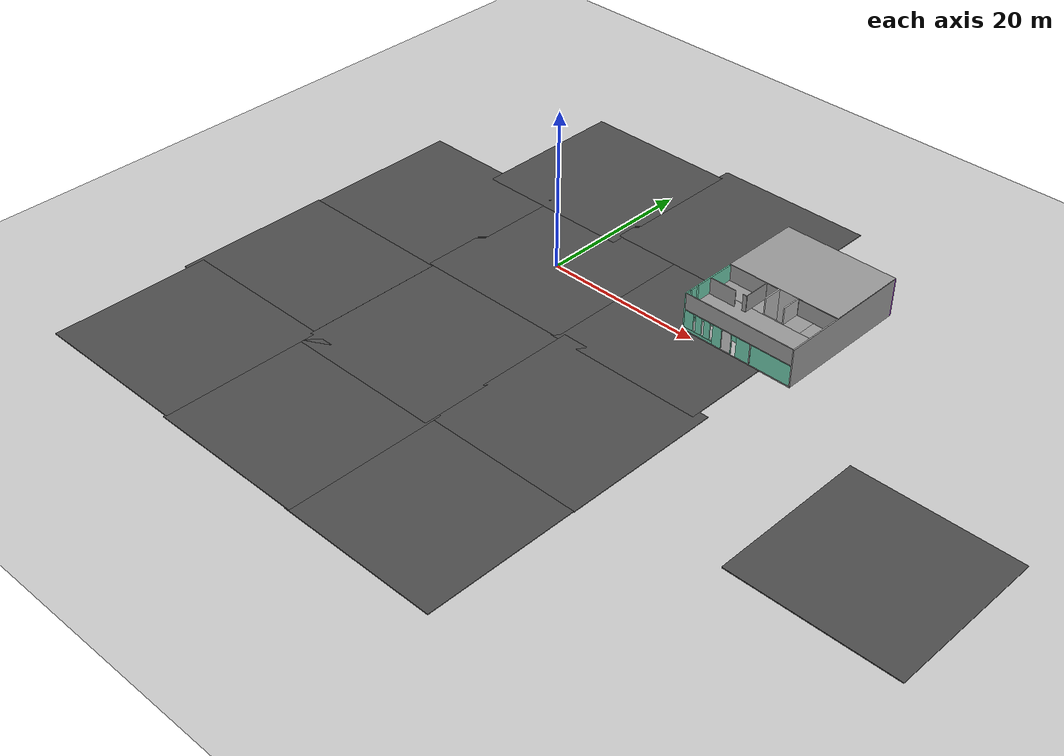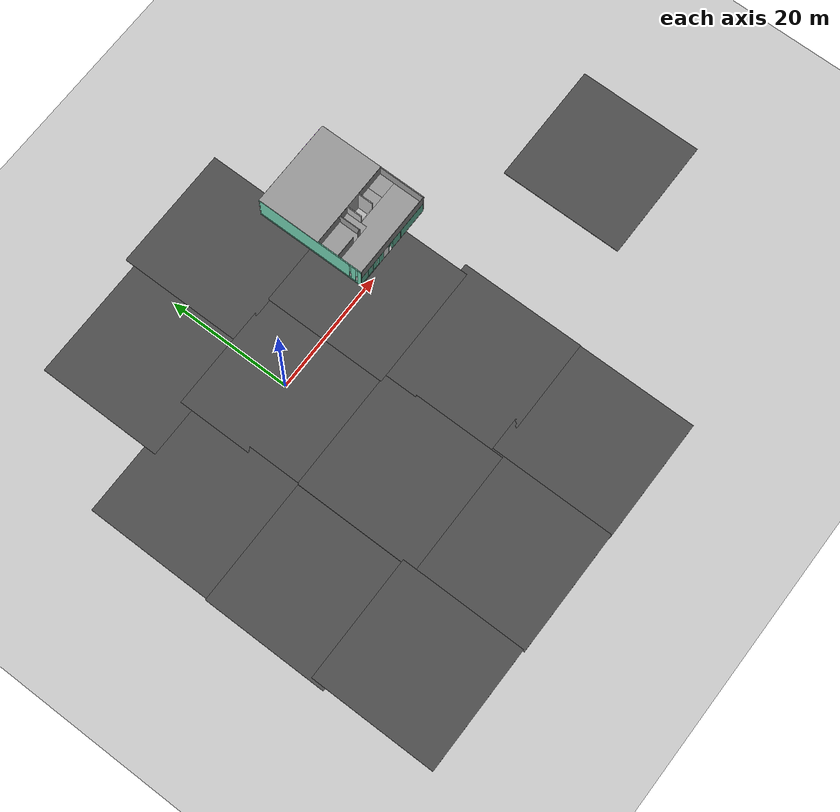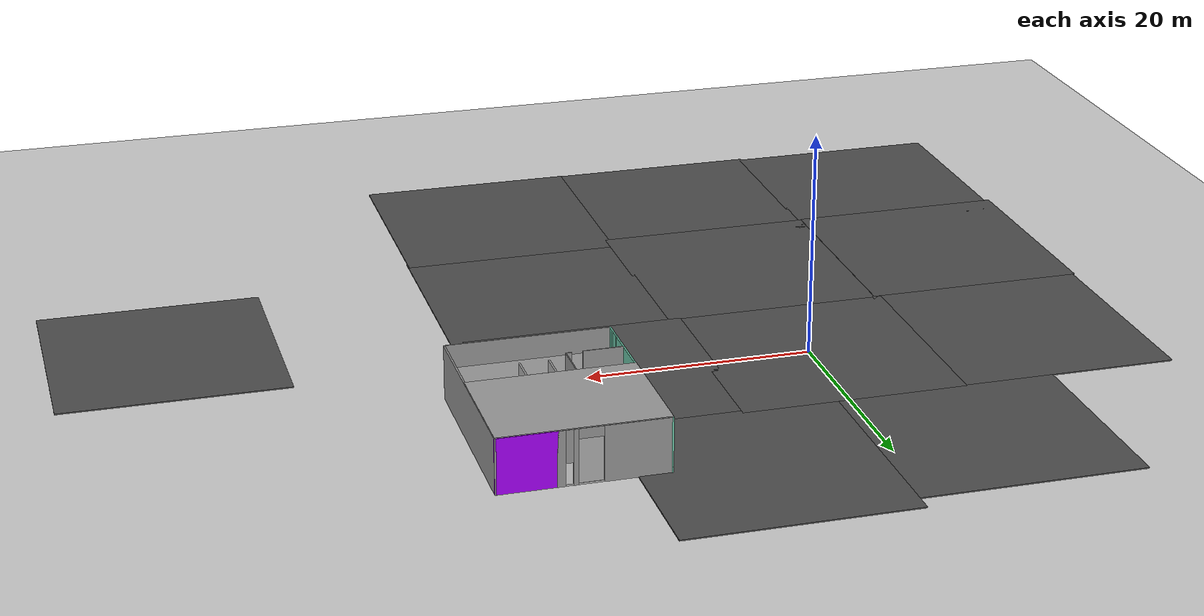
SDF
<sdf version="1.6">
 <world name="default">
  <model name="ground_plane">
   <static>1</static>
   <link name="link">
    <collision name="collision">
     <geometry><plane><normal>0 0 1</normal><size>100 100</size></plane></geometry>
     <surface><friction><ode><mu>100</mu><mu2>50</mu2></ode></friction></surface>
    </collision>
    <visual name="visual">
     <cast_shadows>0</cast_shadows>
     <geometry><plane><normal>0 0 1</normal><size>100 100</size></plane></geometry>
     <material>
      <script><uri>file://media/materials/scripts/gazebo.material</uri><name>Gazebo/Grey</name></script>
     </material>
    </visual>
   </link>
  </model>
  <model name="osrf_elevator">
   <link name="Wall_0">
    <pose>-7.17647 0.013004 0 0 -0 1.57174</pose>
    <visual name="Wall_0_Visual_0">
     <meta><layer>0</layer></meta>
     <pose>-8.72596 0 2.4385 0 -0 0</pose>
     <geometry><box><size>0.663656 0.15 4.877</size></box></geometry>
     <material>
      <script><uri>file://media/materials/scripts/gazebo.material</uri><name>Gazebo/Grey</name></script>
      <ambient>0.435294 0.796078 0.67451 1</ambient>
     </material>
    </visual>
    <collision name="Wall_0_Collision_0">
     <geometry><box><size>0.663656 0.15 4.877</size></box></geometry>
     <pose>-8.72596 0 2.4385 0 -0 0</pose>
    </collision>
    <visual name="Wall_0_Visual_1">
     <meta><layer>0</layer></meta>
     <pose>0.331828 0 0.25 0 -0 0</pose>
     <geometry><box><size>17.4519 0.15 0.5</size></box></geometry>
     <material>
      <script><uri>file://media/materials/scripts/gazebo.material</uri><name>Gazebo/Grey</name></script>
      <ambient>0.435294 0.796078 0.67451 1</ambient>
     </material>
    </visual>
    <collision name="Wall_0_Collision_1">
     <geometry><box><size>17.4519 0.15 0.5</size></box></geometry>
     <pose>0.331828 0 0.25 0 -0 0</pose>
    </collision>
    <visual name="Wall_0_Visual_2">
     <meta><layer>0</layer></meta>
     <pose>-7.67281 0 2.6885 0 -0 0</pose>
     <geometry><box><size>0.816657 0.15 4.377</size></box></geometry>
     <material>
      <script><uri>file://media/materials/scripts/gazebo.material</uri><name>Gazebo/Grey</name></script>
      <ambient>0.435294 0.796078 0.67451 1</ambient>
     </material>
    </visual>
    <collision name="Wall_0_Collision_2">
     <geometry><box><size>0.816657 0.15 4.377</size></box></geometry>
     <pose>-7.67281 0 2.6885 0 -0 0</pose>
    </collision>
    <visual name="Wall_0_Visual_3">
     <meta><layer>0</layer></meta>
     <pose>1.05709 0 2.6885 0 -0 0</pose>
     <geometry><box><size>16.0014 0.15 4.377</size></box></geometry>
     <material>
      <script><uri>file://media/materials/scripts/gazebo.material</uri><name>Gazebo/Grey</name></script>
      <ambient>0.435294 0.796078 0.67451 1</ambient>
     </material>
    </visual>
    <collision name="Wall_0_Collision_3">
     <geometry><box><size>16.0014 0.15 4.377</size></box></geometry>
     <pose>1.05709 0 2.6885 0 -0 0</pose>
    </collision>
    <visual name="Wall_0_Visual_4">
     <meta><layer>0</layer></meta>
     <pose>-8.23763 0 3.6885 0 -0 0</pose>
     <geometry><box><size>0.313 0.15 2.377</size></box></geometry>
     <material>
      <script><uri>file://media/materials/scripts/gazebo.material</uri><name>Gazebo/Grey</name></script>
      <ambient>0.435294 0.796078 0.67451 1</ambient>
     </material>
    </visual>
    <collision name="Wall_0_Collision_4">
     <geometry><box><size>0.313 0.15 2.377</size></box></geometry>
     <pose>-8.23763 0 3.6885 0 -0 0</pose>
    </collision>
    <visual name="Wall_0_Visual_5">
     <meta><layer>0</layer></meta>
     <pose>-7.10405 0 3.6885 0 -0 0</pose>
     <geometry><box><size>0.320861 0.15 2.377</size></box></geometry>
     <material>
      <script><uri>file://media/materials/scripts/gazebo.material</uri><name>Gazebo/Grey</name></script>
      <ambient>0.435294 0.796078 0.67451 1</ambient>
     </material>
    </visual>
    <collision name="Wall_0_Collision_5">
     <geometry><box><size>0.320861 0.15 2.377</size></box></geometry>
     <pose>-7.10405 0 3.6885 0 -0 0</pose>
    </collision>
   </link>
   <link name="Wall_10">
    <pose>3.11003 -4.9485 0 0 -0 0</pose>
    <visual name="Wall_10_Visual_0">
     <meta><layer>0</layer></meta>
     <pose>-1.73626 0 1.3715 0 -0 0</pose>
     <geometry><box><size>4.52747 0.15 2.743</size></box></geometry>
     <material>
      <script><uri>file://media/materials/scripts/gazebo.material</uri><name>Gazebo/Grey</name></script>
      <ambient>0 0.666667 0 1</ambient>
     </material>
    </visual>
    <collision name="Wall_10_Collision_0">
     <geometry><box><size>4.52747 0.15 2.743</size></box></geometry>
     <pose>-1.73626 0 1.3715 0 -0 0</pose>
    </collision>
    <visual name="Wall_10_Visual_1">
     <meta><layer>0</layer></meta>
     <pose>2.58694 0 1.3715 0 -0 0</pose>
     <geometry><box><size>2.82611 0.15 2.743</size></box></geometry>
     <material>
      <script><uri>file://media/materials/scripts/gazebo.material</uri><name>Gazebo/Grey</name></script>
      <ambient>0 0.666667 0 1</ambient>
     </material>
    </visual>
    <collision name="Wall_10_Collision_1">
     <geometry><box><size>2.82611 0.15 2.743</size></box></geometry>
     <pose>2.58694 0 1.3715 0 -0 0</pose>
    </collision>
    <visual name="Wall_10_Visual_2">
     <meta><layer>0</layer></meta>
     <pose>0.85068 0 2.3715 0 -0 0</pose>
     <geometry><box><size>0.646413 0.15 0.743</size></box></geometry>
     <material>
      <script><uri>file://media/materials/scripts/gazebo.material</uri><name>Gazebo/Grey</name></script>
      <ambient>0 0.666667 0 1</ambient>
     </material>
    </visual>
    <collision name="Wall_10_Collision_2">
     <geometry><box><size>0.646413 0.15 0.743</size></box></geometry>
     <pose>0.85068 0 2.3715 0 -0 0</pose>
    </collision>
   </link>
   <link name="Wall_14">
    <pose>1.83803 -6.9775 0 0 -0 1.5708</pose>
    <visual name="Wall_14_Visual_0">
     <meta><layer>0</layer></meta>
     <pose>-0.387674 0 1.3715 0 -0 0</pose>
     <geometry><box><size>3.41138 0.15 2.743</size></box></geometry>
     <material>
      <script><uri>file://media/materials/scripts/gazebo.material</uri><name>Gazebo/Grey</name></script>
      <ambient>1 1 1 1</ambient>
     </material>
    </visual>
    <collision name="Wall_14_Collision_0">
     <geometry><box><size>3.41138 0.15 2.743</size></box></geometry>
     <pose>-0.387674 0 1.3715 0 -0 0</pose>
    </collision>
    <visual name="Wall_14_Visual_1">
     <meta><layer>0</layer></meta>
     <pose>2.00133 0 1.3715 0 -0 0</pose>
     <geometry><box><size>0.184063 0.15 2.743</size></box></geometry>
     <material>
      <script><uri>file://media/materials/scripts/gazebo.material</uri><name>Gazebo/Grey</name></script>
      <ambient>1 1 1 1</ambient>
     </material>
    </visual>
    <collision name="Wall_14_Collision_1">
     <geometry><box><size>0.184063 0.15 2.743</size></box></geometry>
     <pose>2.00133 0 1.3715 0 -0 0</pose>
    </collision>
    <visual name="Wall_14_Visual_2">
     <meta><layer>0</layer></meta>
     <pose>1.61366 0 2.3715 0 -0 0</pose>
     <geometry><box><size>0.591285 0.15 0.743</size></box></geometry>
     <material>
      <script><uri>file://media/materials/scripts/gazebo.material</uri><name>Gazebo/Grey</name></script>
      <ambient>1 1 1 1</ambient>
     </material>
    </visual>
    <collision name="Wall_14_Collision_2">
     <geometry><box><size>0.591285 0.15 0.743</size></box></geometry>
     <pose>1.61366 0 2.3715 0 -0 0</pose>
    </collision>
   </link>
   <link name="Wall_16">
    <collision name="Wall_16_Collision">
     <geometry><box><size>5.12727 0.15 2.743</size></box></geometry>
     <pose>0 0 1.3715 0 -0 0</pose>
    </collision>
    <visual name="Wall_16_Visual">
     <meta><layer>0</layer></meta>
     <pose>0 0 1.3715 0 -0 0</pose>
     <geometry><box><size>5.12727 0.15 2.743</size></box></geometry>
     <material>
      <script><uri>file://media/materials/scripts/gazebo.material</uri><name>Gazebo/Grey</name></script>
      <ambient>1 1 1 1</ambient>
     </material>
    </visual>
    <pose>-4.68247 -1.4425 0 0 -0 0</pose>
   </link>
   <link name="Wall_17">
    <pose>-2.19097 -3.185 0 0 0 -1.56907</pose>
    <visual name="Wall_17_Visual_0">
     <meta><layer>0</layer></meta>
     <pose>-1.22855 0 1.3715 0 -0 0</pose>
     <geometry><box><size>1.17851 0.15 2.743</size></box></geometry>
     <material>
      <script><uri>file://media/materials/scripts/gazebo.material</uri><name>Gazebo/Grey</name></script>
      <ambient>1 1 1 1</ambient>
     </material>
    </visual>
    <collision name="Wall_17_Collision_0">
     <geometry><box><size>1.17851 0.15 2.743</size></box></geometry>
     <pose>-1.22855 0 1.3715 0 -0 0</pose>
    </collision>
    <visual name="Wall_17_Visual_1">
     <meta><layer>0</layer></meta>
     <pose>0.886237 0 1.3715 0 -0 0</pose>
     <geometry><box><size>1.86314 0.15 2.743</size></box></geometry>
     <material>
      <script><uri>file://media/materials/scripts/gazebo.material</uri><name>Gazebo/Grey</name></script>
      <ambient>1 1 1 1</ambient>
     </material>
    </visual>
    <collision name="Wall_17_Collision_1">
     <geometry><box><size>1.86314 0.15 2.743</size></box></geometry>
     <pose>0.886237 0 1.3715 0 -0 0</pose>
    </collision>
    <visual name="Wall_17_Visual_2">
     <meta><layer>0</layer></meta>
     <pose>1.18873 0 1.3715 0 -0 0</pose>
     <geometry><box><size>1.25815 0.15 2.743</size></box></geometry>
     <material>
      <script><uri>file://media/materials/scripts/gazebo.material</uri><name>Gazebo/Grey</name></script>
      <ambient>1 1 1 1</ambient>
     </material>
    </visual>
    <collision name="Wall_17_Collision_2">
     <geometry><box><size>1.25815 0.15 2.743</size></box></geometry>
     <pose>1.18873 0 1.3715 0 -0 0</pose>
    </collision>
    <visual name="Wall_17_Visual_3">
     <meta><layer>0</layer></meta>
     <pose>-0.345304 0 2.3715 0 -0 0</pose>
     <geometry><box><size>0.587991 0.15 0.743</size></box></geometry>
     <material>
      <script><uri>file://media/materials/scripts/gazebo.material</uri><name>Gazebo/Grey</name></script>
      <ambient>1 1 1 1</ambient>
     </material>
    </visual>
    <collision name="Wall_17_Collision_3">
     <geometry><box><size>0.587991 0.15 0.743</size></box></geometry>
     <pose>-0.345304 0 2.3715 0 -0 0</pose>
    </collision>
   </link>
   <link name="Wall_18">
    <collision name="Wall_18_Collision">
     <geometry><box><size>5 0.15 2.743</size></box></geometry>
     <pose>0 0 1.3715 0 -0 0</pose>
    </collision>
    <visual name="Wall_18_Visual">
     <meta><layer>0</layer></meta>
     <pose>0 0 1.3715 0 -0 0</pose>
     <geometry><box><size>5 0.15 2.743</size></box></geometry>
     <material>
      <script><uri>file://media/materials/scripts/gazebo.material</uri><name>Gazebo/Grey</name></script>
      <ambient>1 1 1 1</ambient>
     </material>
    </visual>
    <pose>-4.61297 -4.9275 0 0 -0 3.14159</pose>
   </link>
   <link name="Wall_20">
    <collision name="Wall_20_Collision">
     <geometry><box><size>2.88731 0.15 2.743</size></box></geometry>
     <pose>0 0 1.3715 0 -0 0</pose>
    </collision>
    <visual name="Wall_20_Visual">
     <meta><layer>0</layer></meta>
     <pose>0 0 1.3715 0 -0 0</pose>
     <geometry><box><size>2.88731 0.15 2.743</size></box></geometry>
     <material>
      <script><uri>file://media/materials/scripts/gazebo.material</uri><name>Gazebo/Grey</name></script>
      <ambient>1 1 1 1</ambient>
     </material>
    </visual>
    <pose>5.74253 1.037 0 0 0 -3.1383</pose>
   </link>
   <link name="Wall_21">
    <pose>4.37403 -1.8925 0 0 0 -1.5708</pose>
    <visual name="Wall_21_Visual_0">
     <meta><layer>0</layer></meta>
     <pose>-2.34405 0 1.3715 0 -0 0</pose>
     <geometry><box><size>1.3119 0.15 2.743</size></box></geometry>
     <material>
      <script><uri>file://media/materials/scripts/gazebo.material</uri><name>Gazebo/Grey</name></script>
      <ambient>1 1 1 1</ambient>
     </material>
    </visual>
    <collision name="Wall_21_Collision_0">
     <geometry><box><size>1.3119 0.15 2.743</size></box></geometry>
     <pose>-2.34405 0 1.3715 0 -0 0</pose>
    </collision>
    <visual name="Wall_21_Visual_1">
     <meta><layer>0</layer></meta>
     <pose>-0.970323 0 1.3715 0 -0 0</pose>
     <geometry><box><size>0.213619 0.15 2.743</size></box></geometry>
     <material>
      <script><uri>file://media/materials/scripts/gazebo.material</uri><name>Gazebo/Grey</name></script>
      <ambient>1 1 1 1</ambient>
     </material>
    </visual>
    <collision name="Wall_21_Collision_1">
     <geometry><box><size>0.213619 0.15 2.743</size></box></geometry>
     <pose>-0.970323 0 1.3715 0 -0 0</pose>
    </collision>
    <visual name="Wall_21_Visual_2">
     <meta><layer>0</layer></meta>
     <pose>0.938748 0 1.3715 0 -0 0</pose>
     <geometry><box><size>2.36558 0.15 2.743</size></box></geometry>
     <material>
      <script><uri>file://media/materials/scripts/gazebo.material</uri><name>Gazebo/Grey</name></script>
      <ambient>1 1 1 1</ambient>
     </material>
    </visual>
    <collision name="Wall_21_Collision_2">
     <geometry><box><size>2.36558 0.15 2.743</size></box></geometry>
     <pose>0.938748 0 1.3715 0 -0 0</pose>
    </collision>
    <visual name="Wall_21_Visual_3">
     <meta><layer>0</layer></meta>
     <pose>2.89346 0 1.3715 0 -0 0</pose>
     <geometry><box><size>0.213086 0.15 2.743</size></box></geometry>
     <material>
      <script><uri>file://media/materials/scripts/gazebo.material</uri><name>Gazebo/Grey</name></script>
      <ambient>1 1 1 1</ambient>
     </material>
    </visual>
    <collision name="Wall_21_Collision_3">
     <geometry><box><size>0.213086 0.15 2.743</size></box></geometry>
     <pose>2.89346 0 1.3715 0 -0 0</pose>
    </collision>
    <visual name="Wall_21_Visual_4">
     <meta><layer>0</layer></meta>
     <pose>-1.38262 0 2.3715 0 -0 0</pose>
     <geometry><box><size>0.610969 0.15 0.743</size></box></geometry>
     <material>
      <script><uri>file://media/materials/scripts/gazebo.material</uri><name>Gazebo/Grey</name></script>
      <ambient>1 1 1 1</ambient>
     </material>
    </visual>
    <collision name="Wall_21_Collision_4">
     <geometry><box><size>0.610969 0.15 0.743</size></box></geometry>
     <pose>-1.38262 0 2.3715 0 -0 0</pose>
    </collision>
    <visual name="Wall_21_Visual_5">
     <meta><layer>0</layer></meta>
     <pose>-0.553779 0 2.3715 0 -0 0</pose>
     <geometry><box><size>0.61947 0.15 0.743</size></box></geometry>
     <material>
      <script><uri>file://media/materials/scripts/gazebo.material</uri><name>Gazebo/Grey</name></script>
      <ambient>1 1 1 1</ambient>
     </material>
    </visual>
    <collision name="Wall_21_Collision_5">
     <geometry><box><size>0.61947 0.15 0.743</size></box></geometry>
     <pose>-0.553779 0 2.3715 0 -0 0</pose>
    </collision>
    <visual name="Wall_21_Visual_6">
     <meta><layer>0</layer></meta>
     <pose>2.45423 0 2.3715 0 -0 0</pose>
     <geometry><box><size>0.665375 0.15 0.743</size></box></geometry>
     <material>
      <script><uri>file://media/materials/scripts/gazebo.material</uri><name>Gazebo/Grey</name></script>
      <ambient>1 1 1 1</ambient>
     </material>
    </visual>
    <collision name="Wall_21_Collision_6">
     <geometry><box><size>0.665375 0.15 0.743</size></box></geometry>
     <pose>2.45423 0 2.3715 0 -0 0</pose>
    </collision>
   </link>
   <link name="Wall_23">
    <collision name="Wall_23_Collision">
     <geometry><box><size>2.75 0.15 2.743</size></box></geometry>
     <pose>0 0 1.3715 0 -0 0</pose>
    </collision>
    <visual name="Wall_23_Visual">
     <meta><layer>0</layer></meta>
     <pose>0 0 1.3715 0 -0 0</pose>
     <geometry><box><size>2.75 0.15 2.743</size></box></geometry>
     <material>
      <script><uri>file://media/materials/scripts/gazebo.material</uri><name>Gazebo/Grey</name></script>
      <ambient>1 1 1 1</ambient>
     </material>
    </visual>
    <pose>5.74203 -2.9565 0 0 -0 0</pose>
   </link>
   <link name="Wall_25">
    <collision name="Wall_25_Collision">
     <geometry><box><size>2.75 0.15 2.743</size></box></geometry>
     <pose>0 0 1.3715 0 -0 0</pose>
    </collision>
    <visual name="Wall_25_Visual">
     <meta><layer>0</layer></meta>
     <pose>0 0 1.3715 0 -0 0</pose>
     <geometry><box><size>2.75 0.15 2.743</size></box></geometry>
     <material>
      <script><uri>file://media/materials/scripts/gazebo.material</uri><name>Gazebo/Grey</name></script>
      <ambient>1 1 1 1</ambient>
     </material>
    </visual>
    <pose>5.76203 -0.932496 0 0 -0 0</pose>
   </link>
   <link name="Wall_27">
    <collision name="Wall_27_Collision">
     <geometry><box><size>4 0.15 2.743</size></box></geometry>
     <pose>0 0 1.3715 0 -0 0</pose>
    </collision>
    <visual name="Wall_27_Visual">
     <meta><layer>0</layer></meta>
     <pose>0 0 1.3715 0 -0 0</pose>
     <geometry><box><size>4 0.15 2.743</size></box></geometry>
     <material>
      <script><uri>file://media/materials/scripts/gazebo.material</uri><name>Gazebo/Grey</name></script>
      <ambient>1 1 1 1</ambient>
     </material>
    </visual>
    <pose>4.75503 -7.0125 0 0 -0 1.5708</pose>
   </link>
   <link name="Wall_29">
    <collision name="Wall_29_Collision">
     <geometry><box><size>1.39187 0.15 4.877</size></box></geometry>
     <pose>0 0 2.4385 0 -0 0</pose>
    </collision>
    <visual name="Wall_29_Visual">
     <meta><layer>0</layer></meta>
     <pose>0 0 2.4385 0 -0 0</pose>
     <geometry><box><size>1.39187 0.15 4.877</size></box></geometry>
     <material>
      <script><uri>file://media/materials/scripts/gazebo.material</uri><name>Gazebo/Grey</name></script>
      <ambient>0.996078 0.47451 0.0196078 1</ambient>
     </material>
    </visual>
    <pose>-6.49697 4.1045 0 0 -0 0</pose>
   </link>
   <link name="Wall_30">
    <collision name="Wall_30_Collision">
     <geometry><box><size>3 0.15 4.877</size></box></geometry>
     <pose>0 0 2.4385 0 -0 0</pose>
    </collision>
    <visual name="Wall_30_Visual">
     <meta><layer>0</layer></meta>
     <pose>0 0 2.4385 0 -0 0</pose>
     <geometry><box><size>3 0.15 4.877</size></box></geometry>
     <material>
      <script><uri>file://media/materials/scripts/gazebo.material</uri><name>Gazebo/Grey</name></script>
      <ambient>1 1 1 1</ambient>
     </material>
    </visual>
    <pose>-5.87597 5.5295 0 0 -0 1.5708</pose>
   </link>
   <link name="Wall_31">
    <pose>-6.50397 6.9525 0 0 0 -3.13841</pose>
    <visual name="Wall_31_Visual_0">
     <meta><layer>0</layer></meta>
     <pose>-0.567544 0 2.4385 0 -0 0</pose>
     <geometry><box><size>0.271575 0.15 4.877</size></box></geometry>
     <material>
      <script><uri>file://media/materials/scripts/gazebo.material</uri><name>Gazebo/Grey</name></script>
      <ambient>1 1 1 1</ambient>
     </material>
    </visual>
    <collision name="Wall_31_Collision_0">
     <geometry><box><size>0.271575 0.15 4.877</size></box></geometry>
     <pose>-0.567544 0 2.4385 0 -0 0</pose>
    </collision>
    <visual name="Wall_31_Visual_1">
     <meta><layer>0</layer></meta>
     <pose>0.441678 0 2.4385 0 -0 0</pose>
     <geometry><box><size>0.523307 0.15 4.877</size></box></geometry>
     <material>
      <script><uri>file://media/materials/scripts/gazebo.material</uri><name>Gazebo/Grey</name></script>
      <ambient>1 1 1 1</ambient>
     </material>
    </visual>
    <collision name="Wall_31_Collision_1">
     <geometry><box><size>0.523307 0.15 4.877</size></box></geometry>
     <pose>0.441678 0 2.4385 0 -0 0</pose>
    </collision>
    <visual name="Wall_31_Visual_3">
     <meta><layer>0</layer></meta>
     <pose>-0.125866 0 3.4385 0 -0 0</pose>
     <geometry><box><size>0.611781 0.15 2.877</size></box></geometry>
     <material>
      <script><uri>file://media/materials/scripts/gazebo.material</uri><name>Gazebo/Grey</name></script>
      <ambient>1 1 1 1</ambient>
     </material>
    </visual>
    <collision name="Wall_31_Collision_3">
     <geometry><box><size>0.611781 0.15 2.877</size></box></geometry>
     <pose>-0.125866 0 3.4385 0 -0 0</pose>
    </collision>
   </link>
   <link name="Wall_35">
    <pose>-2.50997 8.9955 0 0 -0 0</pose>
    <visual name="Wall_35_Visual_0">
     <meta><layer>0</layer></meta>
     <pose>-1.92197 0 2.4385 0 -0 0</pose>
     <geometry><box><size>5.65606 0.15 4.877</size></box></geometry>
     <material>
      <script><uri>file://media/materials/scripts/gazebo.material</uri><name>Gazebo/Grey</name></script>
      <ambient>1 1 1 1</ambient>
     </material>
    </visual>
    <collision name="Wall_35_Collision_0">
     <geometry><box><size>5.65606 0.15 4.877</size></box></geometry>
     <pose>-1.92197 0 2.4385 0 -0 0</pose>
    </collision>
    <visual name="Wall_35_Visual_1">
     <meta><layer>0</layer></meta>
     <pose>3.22541 0 2.4385 0 -0 0</pose>
     <geometry><box><size>0.406701 0.15 4.877</size></box></geometry>
     <material>
      <script><uri>file://media/materials/scripts/gazebo.material</uri><name>Gazebo/Grey</name></script>
      <ambient>1 1 1 1</ambient>
     </material>
    </visual>
    <collision name="Wall_35_Collision_1">
     <geometry><box><size>0.406701 0.15 4.877</size></box></geometry>
     <pose>3.22541 0 2.4385 0 -0 0</pose>
    </collision>
    <visual name="Wall_35_Visual_2">
     <meta><layer>0</layer></meta>
     <pose>4.40208 0 2.4385 0 -0 0</pose>
     <geometry><box><size>0.695843 0.15 4.877</size></box></geometry>
     <material>
      <script><uri>file://media/materials/scripts/gazebo.material</uri><name>Gazebo/Grey</name></script>
      <ambient>1 1 1 1</ambient>
     </material>
    </visual>
    <collision name="Wall_35_Collision_2">
     <geometry><box><size>0.695843 0.15 4.877</size></box></geometry>
     <pose>4.40208 0 2.4385 0 -0 0</pose>
    </collision>
    <visual name="Wall_35_Visual_5">
     <meta><layer>0</layer></meta>
     <pose>3.74146 0 3.4385 0 -0 0</pose>
     <geometry><box><size>0.625391 0.15 2.877</size></box></geometry>
     <material>
      <script><uri>file://media/materials/scripts/gazebo.material</uri><name>Gazebo/Grey</name></script>
      <ambient>1 1 1 1</ambient>
     </material>
    </visual>
    <collision name="Wall_35_Collision_5">
     <geometry><box><size>0.625391 0.15 2.877</size></box></geometry>
     <pose>3.74146 0 3.4385 0 -0 0</pose>
    </collision>
    <visual name="Wall_35_Visual_6">
     <meta><layer>0</layer></meta>
     <pose>1.96406 0 4.4385 0 -0 0</pose>
     <geometry><box><size>2.116 0.15 0.877</size></box></geometry>
     <material>
      <script><uri>file://media/materials/scripts/gazebo.material</uri><name>Gazebo/Grey</name></script>
      <ambient>1 1 1 1</ambient>
     </material>
    </visual>
    <collision name="Wall_35_Collision_6">
     <geometry><box><size>2.116 0.15 0.877</size></box></geometry>
     <pose>1.96406 0 4.4385 0 -0 0</pose>
    </collision>
   </link>
   <link name="Wall_36">
    <collision name="Wall_36_Collision">
     <geometry><box><size>5.17 0.15 4.877</size></box></geometry>
     <pose>0 0 2.4385 0 -0 0</pose>
    </collision>
    <visual name="Wall_36_Visual">
     <meta><layer>0</layer></meta>
     <pose>0 0 2.4385 0 -0 0</pose>
     <geometry><box><size>5.17 0.15 4.877</size></box></geometry>
     <material>
      <script><uri>file://media/materials/scripts/gazebo.material</uri><name>Gazebo/Grey</name></script>
      <ambient>0.666667 0 1 1</ambient>
     </material>
    </visual>
    <pose>4.67503 8.9955 0 0 -0 0</pose>
   </link>
   <link name="Wall_5">
    <collision name="Wall_5_Collision">
     <geometry><box><size>18.1152 0.15 4.877</size></box></geometry>
     <pose>0 0 2.4385 0 -0 0</pose>
    </collision>
    <visual name="Wall_5_Visual">
     <meta><layer>0</layer></meta>
     <pose>0 0 2.4385 0 -0 0</pose>
     <geometry><box><size>18.1152 0.15 4.877</size></box></geometry>
     <material>
      <script><uri>file://media/materials/scripts/gazebo.material</uri><name>Gazebo/Grey</name></script>
      <ambient>1 1 1 1</ambient>
     </material>
    </visual>
    <pose>7.18353 0.013004 0 0 0 -1.57096</pose>
   </link>
   <link name="Wall_6">
    <pose>0.007029 -8.9695 0 0 -0 3.14159</pose>
    <visual name="Wall_6_Visual_0">
     <meta><layer>0</layer></meta>
     <pose>-3.60425 0 1.365 0 -0 0</pose>
     <geometry><box><size>7.2915 0.15 2.73</size></box></geometry>
     <material>
      <script><uri>file://media/materials/scripts/gazebo.material</uri><name>Gazebo/Grey</name></script>
      <ambient>0.435294 0.796078 0.67451 1</ambient>
     </material>
    </visual>
    <collision name="Wall_6_Collision_0">
     <geometry><box><size>7.2915 0.15 2.73</size></box></geometry>
     <pose>-3.60425 0 1.365 0 -0 0</pose>
    </collision>
    <visual name="Wall_6_Visual_1">
     <meta><layer>0</layer></meta>
     <pose>0.726241 0 1.365 0 -0 0</pose>
     <geometry><box><size>0.056893 0.15 2.73</size></box></geometry>
     <material>
      <script><uri>file://media/materials/scripts/gazebo.material</uri><name>Gazebo/Grey</name></script>
      <ambient>0.435294 0.796078 0.67451 1</ambient>
     </material>
    </visual>
    <collision name="Wall_6_Collision_1">
     <geometry><box><size>0.056893 0.15 2.73</size></box></geometry>
     <pose>0.726241 0 1.365 0 -0 0</pose>
    </collision>
    <visual name="Wall_6_Visual_2">
     <meta><layer>0</layer></meta>
     <pose>2.65105 0 1.365 0 -0 0</pose>
     <geometry><box><size>1.19273 0.15 2.73</size></box></geometry>
     <material>
      <script><uri>file://media/materials/scripts/gazebo.material</uri><name>Gazebo/Grey</name></script>
      <ambient>0.435294 0.796078 0.67451 1</ambient>
     </material>
    </visual>
    <collision name="Wall_6_Collision_2">
     <geometry><box><size>1.19273 0.15 2.73</size></box></geometry>
     <pose>2.65105 0 1.365 0 -0 0</pose>
    </collision>
    <visual name="Wall_6_Visual_4">
     <meta><layer>0</layer></meta>
     <pose>5.24871 0 0.25 0 -0 0</pose>
     <geometry><box><size>4.00258 0.15 0.5</size></box></geometry>
     <material>
      <script><uri>file://media/materials/scripts/gazebo.material</uri><name>Gazebo/Grey</name></script>
      <ambient>0.435294 0.796078 0.67451 1</ambient>
     </material>
    </visual>
    <collision name="Wall_6_Collision_4">
     <geometry><box><size>4.00258 0.15 0.5</size></box></geometry>
     <pose>5.24871 0 0.25 0 -0 0</pose>
    </collision>
    <visual name="Wall_6_Visual_5">
     <meta><layer>0</layer></meta>
     <pose>4.0419 0 1.615 0 -0 0</pose>
     <geometry><box><size>0.828969 0.15 2.23</size></box></geometry>
     <material>
      <script><uri>file://media/materials/scripts/gazebo.material</uri><name>Gazebo/Grey</name></script>
      <ambient>0.435294 0.796078 0.67451 1</ambient>
     </material>
    </visual>
    <collision name="Wall_6_Collision_5">
     <geometry><box><size>0.828969 0.15 2.23</size></box></geometry>
     <pose>4.0419 0 1.615 0 -0 0</pose>
    </collision>
    <visual name="Wall_6_Visual_6">
     <meta><layer>0</layer></meta>
     <pose>5.18099 0 1.615 0 -0 0</pose>
     <geometry><box><size>0.819207 0.15 2.23</size></box></geometry>
     <material>
      <script><uri>file://media/materials/scripts/gazebo.material</uri><name>Gazebo/Grey</name></script>
      <ambient>0.435294 0.796078 0.67451 1</ambient>
     </material>
    </visual>
    <collision name="Wall_6_Collision_6">
     <geometry><box><size>0.819207 0.15 2.23</size></box></geometry>
     <pose>5.18099 0 1.615 0 -0 0</pose>
    </collision>
    <visual name="Wall_6_Visual_7">
     <meta><layer>0</layer></meta>
     <pose>6.58056 0 1.615 0 -0 0</pose>
     <geometry><box><size>1.33888 0.15 2.23</size></box></geometry>
     <material>
      <script><uri>file://media/materials/scripts/gazebo.material</uri><name>Gazebo/Grey</name></script>
      <ambient>0.435294 0.796078 0.67451 1</ambient>
     </material>
    </visual>
    <collision name="Wall_6_Collision_7">
     <geometry><box><size>1.33888 0.15 2.23</size></box></geometry>
     <pose>6.58056 0 1.615 0 -0 0</pose>
    </collision>
    <visual name="Wall_6_Visual_8">
     <meta><layer>0</layer></meta>
     <pose>0.369648 0 2.365 0 -0 0</pose>
     <geometry><box><size>0.656294 0.15 0.73</size></box></geometry>
     <material>
      <script><uri>file://media/materials/scripts/gazebo.material</uri><name>Gazebo/Grey</name></script>
      <ambient>0.435294 0.796078 0.67451 1</ambient>
     </material>
    </visual>
    <collision name="Wall_6_Collision_8">
     <geometry><box><size>0.656294 0.15 0.73</size></box></geometry>
     <pose>0.369648 0 2.365 0 -0 0</pose>
    </collision>
    <visual name="Wall_6_Visual_9">
     <meta><layer>0</layer></meta>
     <pose>3.43742 0 2.615 0 -0 0</pose>
     <geometry><box><size>0.38 0.15 0.23</size></box></geometry>
     <material>
      <script><uri>file://media/materials/scripts/gazebo.material</uri><name>Gazebo/Grey</name></script>
      <ambient>0.435294 0.796078 0.67451 1</ambient>
     </material>
    </visual>
    <collision name="Wall_6_Collision_9">
     <geometry><box><size>0.38 0.15 0.23</size></box></geometry>
     <pose>3.43742 0 2.615 0 -0 0</pose>
    </collision>
    <visual name="Wall_6_Visual_10">
     <meta><layer>0</layer></meta>
     <pose>4.61389 0 2.615 0 -0 0</pose>
     <geometry><box><size>0.315 0.15 0.23</size></box></geometry>
     <material>
      <script><uri>file://media/materials/scripts/gazebo.material</uri><name>Gazebo/Grey</name></script>
      <ambient>0.435294 0.796078 0.67451 1</ambient>
     </material>
    </visual>
    <collision name="Wall_6_Collision_10">
     <geometry><box><size>0.315 0.15 0.23</size></box></geometry>
     <pose>4.61389 0 2.615 0 -0 0</pose>
    </collision>
    <visual name="Wall_6_Visual_11">
     <meta><layer>0</layer></meta>
     <pose>5.75086 0 2.615 0 -0 0</pose>
     <geometry><box><size>0.320532 0.15 0.23</size></box></geometry>
     <material>
      <script><uri>file://media/materials/scripts/gazebo.material</uri><name>Gazebo/Grey</name></script>
      <ambient>0.435294 0.796078 0.67451 1</ambient>
     </material>
    </visual>
    <collision name="Wall_6_Collision_11">
     <geometry><box><size>0.320532 0.15 0.23</size></box></geometry>
     <pose>5.75086 0 2.615 0 -0 0</pose>
    </collision>
   </link>
   <link name="front_window">
    <pose>-1.42369 -8.99808 1.36421 0 -0 0</pose>
    <collision name="front_window_collision">
     <geometry><box><size>1.37422 0.034702 2.72768</size></box></geometry>
    </collision>
    <visual name="front_window_visual">
     <meta><layer>0</layer></meta>
     <geometry><box><size>1.37422 0.034702 2.72768</size></box></geometry>
     <material><script><name>Gazebo/GreyTransparent</name><uri>__default__</uri></script></material>
    </visual>
   </link>
   <link name="garage_door">
    <pose>-0.536243 9 2 0 -0 0</pose>
    <collision name="collision"><geometry><box><size>2.19515 0.034702 4</size></box></geometry></collision>
    <visual name="visual">
     <meta><layer>0</layer></meta>
     <geometry><box><size>2.19151 0.034702 4</size></box></geometry>
     <material><script><name>Gazebo/GreyTransparent</name><uri>__default__</uri></script></material>
    </visual>
   </link>
   <link name="ceiling1_part1">
    <pose>0.055266 -6.45681 2.76928 0 -0 0</pose>
    <collision name="collision"><geometry><box><size>14.4026 5.175 0.078</size></box></geometry></collision>
    <visual name="visual">
     <meta><layer>1</layer></meta>
     <geometry><box><size>14.4026 5.175 0.078</size></box></geometry>
     <material><script><name>Gazebo/Grey</name><uri>__default__</uri></script></material>
    </visual>
   </link>
   <link name="ceiling1_part2">
    <pose>-3.85568 -3.13263 2.76928 0 -0 0</pose>
    <collision name="collision"><geometry><box><size>6.64939 3.53076 0.078</size></box></geometry></collision>
    <visual name="visual">
     <meta><layer>1</layer></meta>
     <geometry><box><size>6.64939 3.53076 0.078</size></box></geometry>
     <material><script><name>Gazebo/Grey</name><uri>__default__</uri></script></material>
    </visual>
   </link>
   <link name="ceiling1_part3">
    <pose>5.71297 -1.93585 2.76928 0 -0 0</pose>
    <collision name="collision"><geometry><box><size>2.82725 6.08484 0.078</size></box></geometry></collision>
    <visual name="visual">
     <meta><layer>1</layer></meta>
     <geometry><box><size>2.82725 6.08484 0.078</size></box></geometry>
     <material><script><name>Gazebo/Grey</name><uri>__default__</uri></script></material>
    </visual>
   </link>
   <link name="ceiling1_part4">
    <pose>0 3.79823 4.91588 0 -0 0</pose>
    <collision name="collision"><geometry><box><size>14.4595 10.4662 0.078</size></box></geometry></collision>
    <visual name="visual">
     <meta><layer>1</layer></meta>
     <geometry><box><size>14.4595 10.4662 0.078</size></box></geometry>
     <material><script><name>Gazebo/Grey</name><uri>__default__</uri></script></material>
    </visual>
   </link>
   <link name="floor1_part5">
    <pose>-4.65046 -1.39728 3.85794 1.5708 -0 0</pose>
    <collision name="collision"><geometry><box><size>5.03711 2.0998 0.078</size></box></geometry></collision>
    <visual name="visual">
     <meta><layer>1</layer></meta>
     <geometry><box><size>5.03711 2.0998 0.078</size></box></geometry>
     <material><script><name>Gazebo/Grey</name><uri>__default__</uri></script></material>
    </visual>
   </link>
   <link name="floor1_part6">
    <pose>5.71783 1.06705 3.85828 1.5708 -0 0</pose>
    <collision name="collision"><geometry><box><size>2.83967 2.0998 0.078</size></box></geometry></collision>
    <visual name="visual">
     <meta><layer>1</layer></meta>
     <geometry><box><size>2.83967 2.0998 0.078</size></box></geometry>
     <material><script><name>Gazebo/Grey</name><uri>__default__</uri></script></material>
    </visual>
   </link>
   <link name="floor1_part7">
    <pose>2.39941 -1.39058 3.85828 1.5708 -0 0</pose>
    <collision name="collision"><geometry><box><size>9.43026 2.0998 0.078</size></box></geometry></collision>
    <visual name="visual">
     <meta><layer>1</layer></meta>
     <geometry><box><size>9.43026 2.0998 0.078</size></box></geometry>
     <material><script><name>Gazebo/Grey</name><uri>__default__</uri></script></material>
    </visual>
   </link>
   <link name="floor1_part8">
    <pose>0 -9 3.86461 1.5708 -0 0</pose>
    <collision name="collision"><geometry><box><size>14.2592 2.0998 0.078</size></box></geometry></collision>
    <visual name="visual">
     <meta><layer>1</layer></meta>
     <geometry><box><size>14.2592 2.0998 0.078</size></box></geometry>
     <material><script><name>Gazebo/Grey</name><uri>__default__</uri></script></material>
    </visual>
   </link>
   <link name="floor1_part9">
    <pose>-5.36806 -4.90906 3.85794 1.5708 -0 0</pose>
    <collision name="collision"><geometry><box><size>3.47446 2.0998 0.078</size></box></geometry></collision>
    <visual name="visual">
     <meta><layer>1</layer></meta>
     <geometry><box><size>3.47446 2.0998 0.078</size></box></geometry>
     <material><script><name>Gazebo/Grey</name><uri>__default__</uri></script></material>
    </visual>
   </link>
   <link name="floor1_part10">
    <pose>-2.39225 -4.89435 3.85794 1.5708 -0 0</pose>
    <collision name="collision"><geometry><box><size>0.519866 2.0998 0.078</size></box></geometry></collision>
    <visual name="visual">
     <meta><layer>1</layer></meta>
     <geometry><box><size>0.519866 2.0998 0.078</size></box></geometry>
     <material><script><name>Gazebo/Grey</name><uri>__default__</uri></script></material>
    </visual>
   </link>
   <link name="floor1_part11">
    <pose>-2.17305 -3.18058 3.85794 1.5708 0 -1.5708</pose>
    <collision name="collision"><geometry><box><size>3.4917 2.0998 0.078</size></box></geometry></collision>
    <visual name="visual">
     <meta><layer>1</layer></meta>
     <geometry><box><size>3.4917 2.0998 0.078</size></box></geometry>
     <material><script><name>Gazebo/Grey</name><uri>__default__</uri></script></material>
    </visual>
   </link>
   <link name="floor1_part12">
    <pose>3.22506 -2.66914 2.76928 0 -0 0</pose>
    <collision name="collision"><geometry><box><size>2.20229 2.60169 0.078</size></box></geometry></collision>
    <visual name="visual">
     <meta><layer>1</layer></meta>
     <geometry><box><size>2.20229 2.60169 0.078</size></box></geometry>
     <material><script><name>Gazebo/Grey</name><uri>__default__</uri></script></material>
    </visual>
   </link>
   <link name="ground_floor">
    <pose>0 0 0.075 0 -0 0</pose>
    <collision name="collision">
     <geometry><box><size>14.4 18.1 0.15</size></box></geometry>
     <surface><contact><collide_bitmask>1</collide_bitmask></contact></surface>
    </collision>
    <visual name="visual"><geometry><box><size>14.4 18.1 0.15</size></box></geometry></visual>
   </link>
   <link name="elevator_shaft">
    <pose>0.781821 -2.6219 0 0 0 -1.5708</pose>
    <collision name="shaft_wall1_collision">
     <pose>0 1.25 2.4774 0 -0 0</pose>
     <geometry><box><size>2.5 0.15 4.95479</size></box></geometry>
    </collision>
    <visual name="shaft_wall1_visual">
     <pose>0 1.25 2.4774 0 -0 0</pose>
     <geometry><box><size>2.5 0.15 4.95479</size></box></geometry>
    </visual>
    <collision name="shaft_wall2_collision">
     <pose>0 -1.25 2.4774 0 -0 0</pose>
     <geometry><box><size>2.5 0.15 4.95479</size></box></geometry>
    </collision>
    <visual name="shaft_wall2_visual">
     <pose>0 -1.25 2.4774 0 -0 0</pose>
     <geometry><box><size>2.5 0.15 4.95479</size></box></geometry>
    </visual>
    <collision name="shaft_wall3_collision">
     <pose>-1.25 0 2.4774 0 -0 0</pose>
     <geometry><box><size>0.15 2.7 4.95479</size></box></geometry>
    </collision>
    <visual name="shaft_wall3_visual">
     <pose>-1.25 0 2.4774 0 -0 0</pose>
     <geometry><box><size>0.15 2.7 4.95479</size></box></geometry>
    </visual>
    <collision name="floor0_collision">
     <pose>1.19 0 0.075 0 -0 0</pose>
     <geometry><box><size>0.12 2.5 0.15</size></box></geometry>
    </collision>
    <visual name="floor0_visual">
     <pose>1.19 0 0.075 0 -0 0</pose>
     <geometry><box><size>0.12 2.5 0.15</size></box></geometry>
    </visual>
    <collision name="floor1_collision">
     <pose>1.19 0 2.70825 0 -0 0</pose>
     <geometry><box><size>0.12 2.5 0.2</size></box></geometry>
    </collision>
    <visual name="floor1_visual">
     <pose>1.19 0 2.70825 0 -0 0</pose>
     <geometry><box><size>0.12 2.5 0.2</size></box></geometry>
    </visual>
   </link>
   <static>1</static>
   <pose>25.3579 9.76271 0 0 -0 0</pose>
  </model>
  <model name="asphalt_plane">
   <static>1</static>
   <link name="link">
    <collision name="collision"><geometry><box><size>20 20 0.1</size></box></geometry></collision>
    <visual name="visual">
     <cast_shadows>0</cast_shadows>
     <geometry><box><size>20 20 0.1</size></box></geometry>
     <material>
      <script>
       <uri>model://asphalt_plane/materials/scripts</uri>
       <uri>model://asphalt_plane/materials/textures</uri>
       <name>vrc/asphalt</name>
      </script>
     </material>
    </visual>
   </link>
   <pose>54.4007 -14.9404 0 0 -0 0</pose>
  </model>
  <model name="asphalt_plane_0">
   <static>1</static>
   <link name="link">
    <collision name="collision"><geometry><box><size>20 20 0.1</size></box></geometry></collision>
    <visual name="visual">
     <cast_shadows>0</cast_shadows>
     <geometry><box><size>20 20 0.1</size></box></geometry>
     <material>
      <script>
       <uri>model://asphalt_plane/materials/scripts</uri>
       <uri>model://asphalt_plane/materials/textures</uri>
       <name>vrc/asphalt</name>
      </script>
     </material>
    </visual>
   </link>
   <pose>-0.604744 0.056927 0 0 -0 0</pose>
  </model>
  <model name="asphalt_plane_clone_0_clone">
   <static>1</static>
   <link name="link">
    <collision name="collision"><geometry><box><size>20 20 0.1</size></box></geometry></collision>
    <visual name="visual">
     <cast_shadows>0</cast_shadows>
     <geometry><box><size>20 20 0.1</size></box></geometry>
     <material>
      <script>
       <uri>model://asphalt_plane/materials/scripts</uri>
       <uri>model://asphalt_plane/materials/textures</uri>
       <name>vrc/asphalt</name>
      </script>
     </material>
    </visual>
   </link>
   <pose>0.022677 -19.9256 0 0 -0 0</pose>
  </model>
  <model name="asphalt_plane_clone_0_clone_0">
   <static>1</static>
   <link name="link">
    <collision name="collision"><geometry><box><size>20 20 0.1</size></box></geometry></collision>
    <visual name="visual">
     <cast_shadows>0</cast_shadows>
     <geometry><box><size>20 20 0.1</size></box></geometry>
     <material>
      <script>
       <uri>model://asphalt_plane/materials/scripts</uri>
       <uri>model://asphalt_plane/materials/textures</uri>
       <name>vrc/asphalt</name>
      </script>
     </material>
    </visual>
   </link>
   <pose>-19.9882 -20.0625 0 0 -0 0</pose>
  </model>
  <model name="asphalt_plane_clone_0_clone_1">
   <static>1</static>
   <link name="link">
    <collision name="collision"><geometry><box><size>20 20 0.1</size></box></geometry></collision>
    <visual name="visual">
     <cast_shadows>0</cast_shadows>
     <geometry><box><size>20 20 0.1</size></box></geometry>
     <material>
      <script>
       <uri>model://asphalt_plane/materials/scripts</uri>
       <uri>model://asphalt_plane/materials/textures</uri>
       <name>vrc/asphalt</name>
      </script>
     </material>
    </visual>
   </link>
   <pose>-19.7996 -0.072088 0 0 -0 0</pose>
  </model>
  <model name="asphalt_plane_clone_0_clone_0_clone">
   <static>1</static>
   <link name="link">
    <collision name="collision"><geometry><box><size>20 20 0.1</size></box></geometry></collision>
    <visual name="visual">
     <cast_shadows>0</cast_shadows>
     <geometry><box><size>20 20 0.1</size></box></geometry>
     <material>
      <script>
       <uri>model://asphalt_plane/materials/scripts</uri>
       <uri>model://asphalt_plane/materials/textures</uri>
       <name>vrc/asphalt</name>
      </script>
     </material>
    </visual>
   </link>
   <pose>-19.5382 -37.7335 0 0 -0 0</pose>
  </model>
  <model name="asphalt_plane_clone_0_clone_0_clone_0">
   <static>1</static>
   <link name="link">
    <collision name="collision"><geometry><box><size>20 20 0.1</size></box></geometry></collision>
    <visual name="visual">
     <cast_shadows>0</cast_shadows>
     <geometry><box><size>20 20 0.1</size></box></geometry>
     <material>
      <script>
       <uri>model://asphalt_plane/materials/scripts</uri>
       <uri>model://asphalt_plane/materials/textures</uri>
       <name>vrc/asphalt</name>
      </script>
     </material>
    </visual>
   </link>
   <pose>0.267265 -37.9956 0 0 -0 0</pose>
  </model>
  <model name="asphalt_plane_clone_0_clone_0_clone_1">
   <static>1</static>
   <link name="link">
    <collision name="collision"><geometry><box><size>20 20 0.1</size></box></geometry></collision>
    <visual name="visual">
     <cast_shadows>0</cast_shadows>
     <geometry><box><size>20 20 0.1</size></box></geometry>
     <material>
      <script>
       <uri>model://asphalt_plane/materials/scripts</uri>
       <uri>model://asphalt_plane/materials/textures</uri>
       <name>vrc/asphalt</name>
      </script>
     </material>
    </visual>
   </link>
   <pose>19.6543 -38.0718 0 0 -0 0</pose>
  </model>
  <model name="asphalt_plane_clone_0_clone_0_clone_2">
   <static>1</static>
   <link name="link">
    <collision name="collision"><geometry><box><size>20 20 0.1</size></box></geometry></collision>
    <visual name="visual">
     <cast_shadows>0</cast_shadows>
     <geometry><box><size>20 20 0.1</size></box></geometry>
     <material>
      <script>
       <uri>model://asphalt_plane/materials/scripts</uri>
       <uri>model://asphalt_plane/materials/textures</uri>
       <name>vrc/asphalt</name>
      </script>
     </material>
    </visual>
   </link>
   <pose>19.7225 -18.9788 0 0 -0 0</pose>
  </model>
  <model name="asphalt_plane_clone_0_clone_0_clone_3">
   <static>1</static>
   <link name="link">
    <collision name="collision"><geometry><box><size>20 20 0.1</size></box></geometry></collision>
    <visual name="visual">
     <cast_shadows>0</cast_shadows>
     <geometry><box><size>20 20 0.1</size></box></geometry>
     <material>
      <script>
       <uri>model://asphalt_plane/materials/scripts</uri>
       <uri>model://asphalt_plane/materials/textures</uri>
       <name>vrc/asphalt</name>
      </script>
     </material>
    </visual>
   </link>
   <pose>18.5907 -0.077859 0 0 -0 0</pose>
  </model>
  <model name="asphalt_plane_clone_0_clone_0_clone_4">
   <static>1</static>
   <link name="link">
    <collision name="collision"><geometry><box><size>20 20 0.1</size></box></geometry></collision>
    <visual name="visual">
     <cast_shadows>0</cast_shadows>
     <geometry><box><size>20 20 0.1</size></box></geometry>
     <material>
      <script>
       <uri>model://asphalt_plane/materials/scripts</uri>
       <uri>model://asphalt_plane/materials/textures</uri>
       <name>vrc/asphalt</name>
      </script>
     </material>
    </visual>
   </link>
   <pose>10.979 19.6279 0 0 -0 0</pose>
  </model>
  <model name="asphalt_plane_clone_0_clone_0_clone_5">
   <static>1</static>
   <link name="link">
    <collision name="collision"><geometry><box><size>20 20 0.1</size></box></geometry></collision>
    <visual name="visual">
     <cast_shadows>0</cast_shadows>
     <geometry><box><size>20 20 0.1</size></box></geometry>
     <material>
      <script>
       <uri>model://asphalt_plane/materials/scripts</uri>
       <uri>model://asphalt_plane/materials/textures</uri>
       <name>vrc/asphalt</name>
      </script>
     </material>
    </visual>
   </link>
   <pose>-8.53898 18.0812 0 0 -0 0</pose>
  </model>
 </world>
</sdf>
